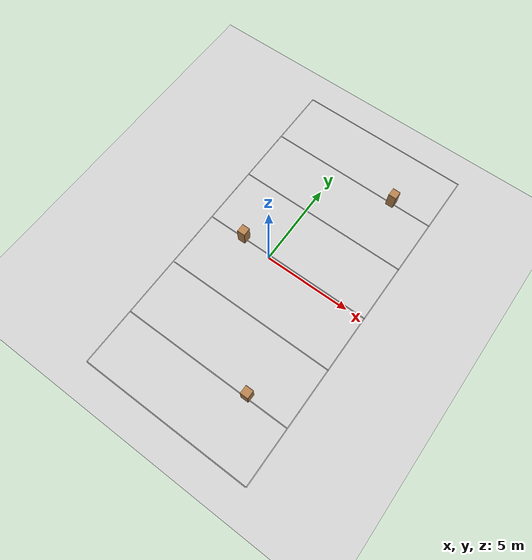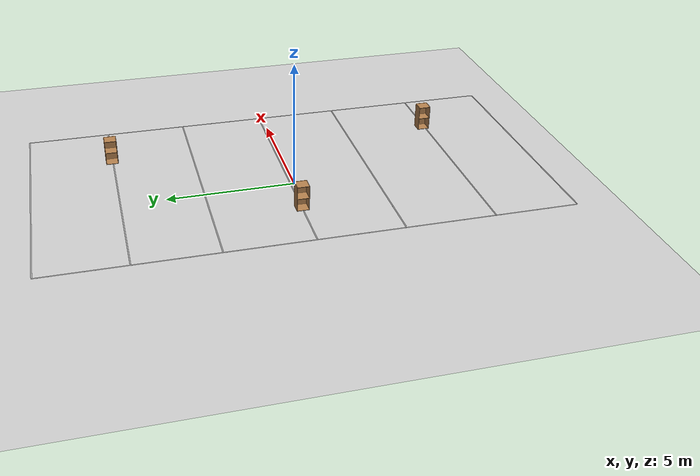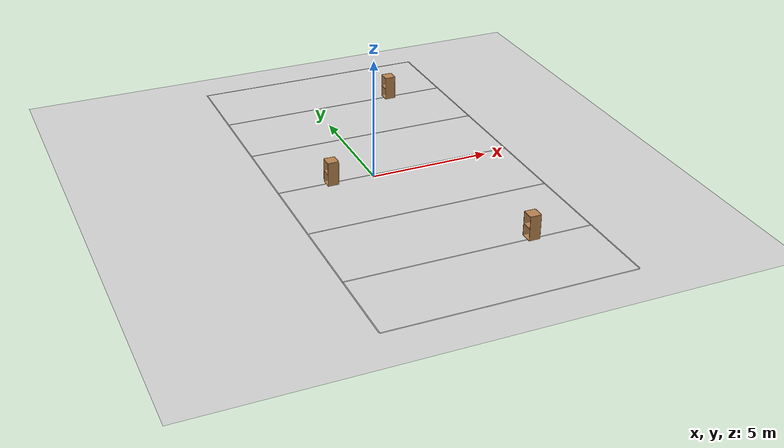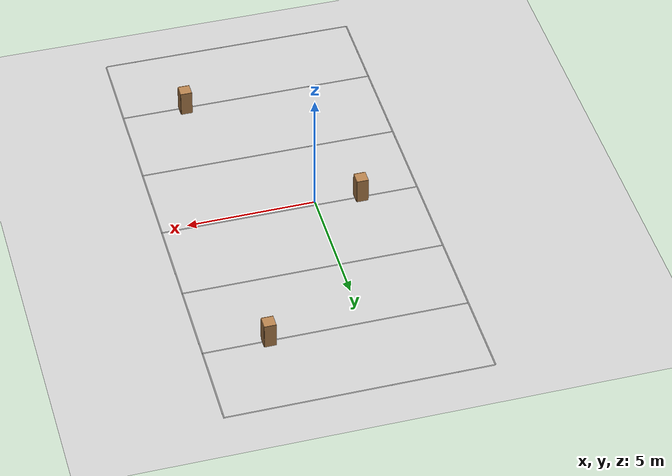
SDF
<sdf version="1.7">
 <world name="default">
  <model name="ground_plane">
   <static>1</static>
   <link name="link">
    <collision name="collision">
     <geometry><plane><normal>0 0 1</normal><size>100 100</size></plane></geometry>
     <surface>
      <contact><collide_bitmask>65535</collide_bitmask></contact>
      <friction><ode><mu>100</mu><mu2>50</mu2></ode></friction>
     </surface>
    </collision>
    <visual name="visual">
     <cast_shadows>0</cast_shadows>
     <geometry><plane><normal>0 0 1</normal><size>100 100</size></plane></geometry>
     <material>
      <script><uri>file://media/materials/scripts/gazebo.material</uri><name>Gazebo/Grey</name></script>
     </material>
    </visual>
   </link>
  </model>
  <gravity>0 0 -9.8</gravity>
  <magnetic_field>6e-06 2.3e-05 -4.2e-05</magnetic_field>
  <atmosphere type="adiabatic"/>
  <physics type="ode">
   <max_step_size>0.001</max_step_size>
   <real_time_factor>1</real_time_factor>
   <real_time_update_rate>1000</real_time_update_rate>
  </physics>
  <scene><ambient>0.4 0.4 0.4 1</ambient><background>0.7 0.7 0.7 1</background><shadows>1</shadows></scene>
  <spherical_coordinates>
   <surface_model>EARTH_WGS84</surface_model>
   <latitude_deg>0</latitude_deg>
   <longitude_deg>0</longitude_deg>
   <elevation>0</elevation>
   <heading_deg>0</heading_deg>
  </spherical_coordinates>
  <model name="cabinet">
   <static>1</static>
   <link name="cabinet_bottom_plate">
    <inertial>
     <pose>0 0 -1 0 -0 0</pose>
     <inertia><ixx>2.05</ixx><ixy>0</ixy><ixz>0</ixz><iyy>2.05</iyy><iyz>0</iyz><izz>2.05</izz></inertia>
     <mass>25</mass>
    </inertial>
    <collision name="cabinet_bottom_plate_geom">
     <pose>0 0 0.01 0 -0 0</pose>
     <geometry><box><size>0.45 0.45 0.02</size></box></geometry>
    </collision>
    <visual name="cabinet_bottom_plate_geom_visual">
     <pose>0 0 0.01 0 -0 0</pose>
     <geometry><box><size>0.45 0.45 0.02</size></box></geometry>
     <material>
      <script><uri>file://media/materials/scripts/gazebo.material</uri><name>Gazebo/Wood</name></script>
     </material>
    </visual>
    <collision name="cabinet_bottom_plate_geom_cabinet_back_plate">
     <pose>0.235 0 0.51 0 -0 0</pose>
     <geometry><box><size>0.02 0.45 1.02</size></box></geometry>
    </collision>
    <visual name="cabinet_bottom_plate_geom_cabinet_back_plate_visual">
     <pose>0.235 0 0.51 0 -0 0</pose>
     <geometry><box><size>0.02 0.45 1.02</size></box></geometry>
     <material>
      <script><uri>file://media/materials/scripts/gazebo.material</uri><name>Gazebo/Wood</name></script>
     </material>
    </visual>
    <collision name="cabinet_bottom_plate_geom_cabinet_left_plate">
     <pose>0 0.235 0.51 0 -0 0</pose>
     <geometry><box><size>0.45 0.02 1.02</size></box></geometry>
    </collision>
    <visual name="cabinet_bottom_plate_geom_cabinet_left_plate_visual">
     <pose>0 0.235 0.51 0 -0 0</pose>
     <geometry><box><size>0.45 0.02 1.02</size></box></geometry>
     <material>
      <script><uri>file://media/materials/scripts/gazebo.material</uri><name>Gazebo/Wood</name></script>
     </material>
    </visual>
    <collision name="cabinet_bottom_plate_geom_cabinet_middle_plate">
     <pose>0 0 0.51 0 -0 0</pose>
     <geometry><box><size>0.45 0.45 0.02</size></box></geometry>
    </collision>
    <visual name="cabinet_bottom_plate_geom_cabinet_middle_plate_visual">
     <pose>0 0 0.51 0 -0 0</pose>
     <geometry><box><size>0.45 0.45 0.02</size></box></geometry>
     <material>
      <script><uri>file://media/materials/scripts/gazebo.material</uri><name>Gazebo/Wood</name></script>
     </material>
    </visual>
    <collision name="cabinet_bottom_plate_geom_cabinet_right_plate">
     <pose>0 -0.235 0.51 0 -0 0</pose>
     <geometry><box><size>0.45 0.02 1.02</size></box></geometry>
    </collision>
    <visual name="cabinet_bottom_plate_geom_cabinet_right_plate_visual">
     <pose>0 -0.235 0.51 0 -0 0</pose>
     <geometry><box><size>0.45 0.02 1.02</size></box></geometry>
     <material>
      <script><uri>file://media/materials/scripts/gazebo.material</uri><name>Gazebo/Wood</name></script>
     </material>
    </visual>
    <collision name="cabinet_bottom_plate_geom_cabinet_top_plate">
     <pose>0 0 1.01 0 -0 0</pose>
     <geometry><box><size>0.45 0.45 0.02</size></box></geometry>
    </collision>
    <visual name="cabinet_bottom_plate_geom_cabinet_top_plate_visual">
     <pose>0 0 1.01 0 -0 0</pose>
     <geometry><box><size>0.45 0.45 0.02</size></box></geometry>
     <material>
      <script><uri>file://media/materials/scripts/gazebo.material</uri><name>Gazebo/Wood</name></script>
     </material>
    </visual>
   </link>
   <pose>3.54221 6.76102 0 0 -0 0</pose>
  </model>
  <model name="line_1_0">
   <link name="Wall_0">
    <pose>-0.194987 0 0 0 -0 3.14159</pose>
    <inertial>
     <mass>1</mass>
     <inertia><ixx>1</ixx><ixy>0</ixy><ixz>0</ixz><iyy>1</iyy><iyz>0</iyz><izz>1</izz></inertia>
    </inertial>
    <visual name="Wall_0_Visual">
     <pose>0 0 0.0025 0 -0 0</pose>
     <geometry><box><size>10 0.05 5e-05</size></box></geometry>
     <material>
      <script><uri>file://media/materials/scripts/gazebo.material</uri><name>Gazebo/Grey</name></script>
      <ambient>0 0 0 1</ambient>
      <shader type="pixel"><normal_map>__default__</normal_map></shader>
      <diffuse>0.7 0.7 0.7 1</diffuse>
      <specular>0.01 0.01 0.01 1</specular>
      <emissive>0 0 0 1</emissive>
     </material>
     <meta><layer>0</layer></meta>
    </visual>
    <collision name="Wall_0_Collision">
     <pose>0 0 0.0025 0 -0 0</pose>
     <geometry><box><size>10 0.05 5e-05</size></box></geometry>
     <surface>
      <friction>
       <ode><mu>1</mu><mu2>1</mu2><fdir1>0 0 0</fdir1><slip1>0</slip1><slip2>0</slip2></ode>
       <torsional>
        <coefficient>1</coefficient>
        <patch_radius>0</patch_radius>
        <surface_radius>0</surface_radius>
        <use_patch_radius>1</use_patch_radius>
        <ode><slip>0</slip></ode>
       </torsional>
      </friction>
      <bounce><restitution_coefficient>0</restitution_coefficient><threshold>1e+06</threshold></bounce>
      <contact>
       <collide_without_contact>0</collide_without_contact>
       <collide_without_contact_bitmask>1</collide_without_contact_bitmask>
       <collide_bitmask>1</collide_bitmask>
       <ode>
        <soft_cfm>0</soft_cfm>
        <soft_erp>0.2</soft_erp>
        <kp>1e+13</kp>
        <kd>1</kd>
        <max_vel>0.01</max_vel>
        <min_depth>0</min_depth>
       </ode>
       <bullet>
        <split_impulse>1</split_impulse>
        <split_impulse_penetration_threshold>-0.01</split_impulse_penetration_threshold>
        <soft_cfm>0</soft_cfm>
        <soft_erp>0.2</soft_erp>
        <kp>1e+13</kp>
        <kd>1</kd>
       </bullet>
      </contact>
     </surface>
    </collision>
   </link>
   <static>1</static>
   <pose>1.21607 0.141988 0 0 -0 0</pose>
  </model>
  <model name="black_line_20m">
   <link name="Wall_0">
    <pose>1.3175 -0.5225 0 0 -0 1.5708</pose>
    <inertial>
     <mass>1</mass>
     <inertia><ixx>1</ixx><ixy>0</ixy><ixz>0</ixz><iyy>1</iyy><iyz>0</iyz><izz>1</izz></inertia>
    </inertial>
    <visual name="Wall_0_Visual">
     <pose>0 0 0.0005 0 -0 0</pose>
     <geometry><box><size>20 0.05 0.0005</size></box></geometry>
     <material>
      <script><uri>file://media/materials/scripts/gazebo.material</uri><name>Gazebo/Grey</name></script>
      <ambient>0 0 0 1</ambient>
      <shader type="pixel"><normal_map>__default__</normal_map></shader>
      <diffuse>0.7 0.7 0.7 1</diffuse>
      <specular>0.01 0.01 0.01 1</specular>
      <emissive>0 0 0 1</emissive>
     </material>
     <meta><layer>0</layer></meta>
    </visual>
    <collision name="Wall_0_Collision">
     <pose>0 0 0.0005 0 -0 0</pose>
     <geometry><box><size>3.9 0.05 0.001</size></box></geometry>
     <surface>
      <friction>
       <ode><mu>1</mu><mu2>1</mu2><fdir1>0 0 0</fdir1><slip1>0</slip1><slip2>0</slip2></ode>
       <torsional>
        <coefficient>1</coefficient>
        <patch_radius>0</patch_radius>
        <surface_radius>0</surface_radius>
        <use_patch_radius>1</use_patch_radius>
        <ode><slip>0</slip></ode>
       </torsional>
      </friction>
      <bounce><restitution_coefficient>0</restitution_coefficient><threshold>1e+06</threshold></bounce>
      <contact>
       <collide_without_contact>0</collide_without_contact>
       <collide_without_contact_bitmask>1</collide_without_contact_bitmask>
       <collide_bitmask>1</collide_bitmask>
       <ode>
        <soft_cfm>0</soft_cfm>
        <soft_erp>0.2</soft_erp>
        <kp>1e+13</kp>
        <kd>1</kd>
        <max_vel>0.01</max_vel>
        <min_depth>0</min_depth>
       </ode>
       <bullet>
        <split_impulse>1</split_impulse>
        <split_impulse_penetration_threshold>-0.01</split_impulse_penetration_threshold>
        <soft_cfm>0</soft_cfm>
        <soft_erp>0.2</soft_erp>
        <kp>1e+13</kp>
        <kd>1</kd>
       </bullet>
      </contact>
     </surface>
    </collision>
   </link>
   <static>1</static>
   <pose>-5.33351 0.54242 0.001 0 -0 0</pose>
  </model>
  <model name="line_1_0_clone">
   <link name="Wall_0">
    <pose>-0.194987 0 0 0 -0 3.14159</pose>
    <inertial>
     <mass>1</mass>
     <inertia><ixx>1</ixx><ixy>0</ixy><ixz>0</ixz><iyy>1</iyy><iyz>0</iyz><izz>1</izz></inertia>
    </inertial>
    <visual name="Wall_0_Visual">
     <pose>0 0 0.0025 0 -0 0</pose>
     <geometry><box><size>10 0.05 5e-05</size></box></geometry>
     <material>
      <script><uri>file://media/materials/scripts/gazebo.material</uri><name>Gazebo/Grey</name></script>
      <ambient>0 0 0 1</ambient>
      <shader type="pixel"><normal_map>__default__</normal_map></shader>
      <diffuse>0.7 0.7 0.7 1</diffuse>
      <specular>0.01 0.01 0.01 1</specular>
      <emissive>0 0 0 1</emissive>
     </material>
     <meta><layer>0</layer></meta>
    </visual>
    <collision name="Wall_0_Collision">
     <pose>0 0 0.0025 0 -0 0</pose>
     <geometry><box><size>10 0.05 5e-05</size></box></geometry>
     <surface>
      <friction>
       <ode><mu>1</mu><mu2>1</mu2><fdir1>0 0 0</fdir1><slip1>0</slip1><slip2>0</slip2></ode>
       <torsional>
        <coefficient>1</coefficient>
        <patch_radius>0</patch_radius>
        <surface_radius>0</surface_radius>
        <use_patch_radius>1</use_patch_radius>
        <ode><slip>0</slip></ode>
       </torsional>
      </friction>
      <bounce><restitution_coefficient>0</restitution_coefficient><threshold>1e+06</threshold></bounce>
      <contact>
       <collide_without_contact>0</collide_without_contact>
       <collide_without_contact_bitmask>1</collide_without_contact_bitmask>
       <collide_bitmask>1</collide_bitmask>
       <ode>
        <soft_cfm>0</soft_cfm>
        <soft_erp>0.2</soft_erp>
        <kp>1e+13</kp>
        <kd>1</kd>
        <max_vel>0.01</max_vel>
        <min_depth>0</min_depth>
       </ode>
       <bullet>
        <split_impulse>1</split_impulse>
        <split_impulse_penetration_threshold>-0.01</split_impulse_penetration_threshold>
        <soft_cfm>0</soft_cfm>
        <soft_erp>0.2</soft_erp>
        <kp>1e+13</kp>
        <kd>1</kd>
       </bullet>
      </contact>
     </surface>
    </collision>
   </link>
   <static>1</static>
   <pose>1.18778 10.0091 0 0 -0 0</pose>
  </model>
  <model name="line_1_0_clone_0">
   <link name="Wall_0">
    <pose>-0.194987 0 0 0 -0 3.14159</pose>
    <inertial>
     <mass>1</mass>
     <inertia><ixx>1</ixx><ixy>0</ixy><ixz>0</ixz><iyy>1</iyy><iyz>0</iyz><izz>1</izz></inertia>
    </inertial>
    <visual name="Wall_0_Visual">
     <pose>0 0 0.0025 0 -0 0</pose>
     <geometry><box><size>10 0.05 5e-05</size></box></geometry>
     <material>
      <script><uri>file://media/materials/scripts/gazebo.material</uri><name>Gazebo/Grey</name></script>
      <ambient>0 0 0 1</ambient>
      <shader type="pixel"><normal_map>__default__</normal_map></shader>
      <diffuse>0.7 0.7 0.7 1</diffuse>
      <specular>0.01 0.01 0.01 1</specular>
      <emissive>0 0 0 1</emissive>
     </material>
     <meta><layer>0</layer></meta>
    </visual>
    <collision name="Wall_0_Collision">
     <pose>0 0 0.0025 0 -0 0</pose>
     <geometry><box><size>10 0.05 5e-05</size></box></geometry>
     <surface>
      <friction>
       <ode><mu>1</mu><mu2>1</mu2><fdir1>0 0 0</fdir1><slip1>0</slip1><slip2>0</slip2></ode>
       <torsional>
        <coefficient>1</coefficient>
        <patch_radius>0</patch_radius>
        <surface_radius>0</surface_radius>
        <use_patch_radius>1</use_patch_radius>
        <ode><slip>0</slip></ode>
       </torsional>
      </friction>
      <bounce><restitution_coefficient>0</restitution_coefficient><threshold>1e+06</threshold></bounce>
      <contact>
       <collide_without_contact>0</collide_without_contact>
       <collide_without_contact_bitmask>1</collide_without_contact_bitmask>
       <collide_bitmask>1</collide_bitmask>
       <ode>
        <soft_cfm>0</soft_cfm>
        <soft_erp>0.2</soft_erp>
        <kp>1e+13</kp>
        <kd>1</kd>
        <max_vel>0.01</max_vel>
        <min_depth>0</min_depth>
       </ode>
       <bullet>
        <split_impulse>1</split_impulse>
        <split_impulse_penetration_threshold>-0.01</split_impulse_penetration_threshold>
        <soft_cfm>0</soft_cfm>
        <soft_erp>0.2</soft_erp>
        <kp>1e+13</kp>
        <kd>1</kd>
       </bullet>
      </contact>
     </surface>
    </collision>
   </link>
   <static>1</static>
   <pose>1.21008 6.73083 0 0 -0 0</pose>
  </model>
  <model name="line_1_0_clone_1">
   <link name="Wall_0">
    <pose>-0.194987 0 0 0 -0 3.14159</pose>
    <inertial>
     <mass>1</mass>
     <inertia><ixx>1</ixx><ixy>0</ixy><ixz>0</ixz><iyy>1</iyy><iyz>0</iyz><izz>1</izz></inertia>
    </inertial>
    <visual name="Wall_0_Visual">
     <pose>0 0 0.0025 0 -0 0</pose>
     <geometry><box><size>10 0.05 5e-05</size></box></geometry>
     <material>
      <script><uri>file://media/materials/scripts/gazebo.material</uri><name>Gazebo/Grey</name></script>
      <ambient>0 0 0 1</ambient>
      <shader type="pixel"><normal_map>__default__</normal_map></shader>
      <diffuse>0.7 0.7 0.7 1</diffuse>
      <specular>0.01 0.01 0.01 1</specular>
      <emissive>0 0 0 1</emissive>
     </material>
     <meta><layer>0</layer></meta>
    </visual>
    <collision name="Wall_0_Collision">
     <pose>0 0 0.0025 0 -0 0</pose>
     <geometry><box><size>10 0.05 5e-05</size></box></geometry>
     <surface>
      <friction>
       <ode><mu>1</mu><mu2>1</mu2><fdir1>0 0 0</fdir1><slip1>0</slip1><slip2>0</slip2></ode>
       <torsional>
        <coefficient>1</coefficient>
        <patch_radius>0</patch_radius>
        <surface_radius>0</surface_radius>
        <use_patch_radius>1</use_patch_radius>
        <ode><slip>0</slip></ode>
       </torsional>
      </friction>
      <bounce><restitution_coefficient>0</restitution_coefficient><threshold>1e+06</threshold></bounce>
      <contact>
       <collide_without_contact>0</collide_without_contact>
       <collide_without_contact_bitmask>1</collide_without_contact_bitmask>
       <collide_bitmask>1</collide_bitmask>
       <ode>
        <soft_cfm>0</soft_cfm>
        <soft_erp>0.2</soft_erp>
        <kp>1e+13</kp>
        <kd>1</kd>
        <max_vel>0.01</max_vel>
        <min_depth>0</min_depth>
       </ode>
       <bullet>
        <split_impulse>1</split_impulse>
        <split_impulse_penetration_threshold>-0.01</split_impulse_penetration_threshold>
        <soft_cfm>0</soft_cfm>
        <soft_erp>0.2</soft_erp>
        <kp>1e+13</kp>
        <kd>1</kd>
       </bullet>
      </contact>
     </surface>
    </collision>
   </link>
   <static>1</static>
   <pose>1.22845 -3.19568 0 0 -0 0</pose>
  </model>
  <model name="line_1_0_clone_2">
   <link name="Wall_0">
    <pose>-0.194987 0 0 0 -0 3.14159</pose>
    <inertial>
     <mass>1</mass>
     <inertia><ixx>1</ixx><ixy>0</ixy><ixz>0</ixz><iyy>1</iyy><iyz>0</iyz><izz>1</izz></inertia>
    </inertial>
    <visual name="Wall_0_Visual">
     <pose>0 0 0.0025 0 -0 0</pose>
     <geometry><box><size>10 0.05 5e-05</size></box></geometry>
     <material>
      <script><uri>file://media/materials/scripts/gazebo.material</uri><name>Gazebo/Grey</name></script>
      <ambient>0 0 0 1</ambient>
      <shader type="pixel"><normal_map>__default__</normal_map></shader>
      <diffuse>0.7 0.7 0.7 1</diffuse>
      <specular>0.01 0.01 0.01 1</specular>
      <emissive>0 0 0 1</emissive>
     </material>
     <meta><layer>0</layer></meta>
    </visual>
    <collision name="Wall_0_Collision">
     <pose>0 0 0.0025 0 -0 0</pose>
     <geometry><box><size>10 0.05 5e-05</size></box></geometry>
     <surface>
      <friction>
       <ode><mu>1</mu><mu2>1</mu2><fdir1>0 0 0</fdir1><slip1>0</slip1><slip2>0</slip2></ode>
       <torsional>
        <coefficient>1</coefficient>
        <patch_radius>0</patch_radius>
        <surface_radius>0</surface_radius>
        <use_patch_radius>1</use_patch_radius>
        <ode><slip>0</slip></ode>
       </torsional>
      </friction>
      <bounce><restitution_coefficient>0</restitution_coefficient><threshold>1e+06</threshold></bounce>
      <contact>
       <collide_without_contact>0</collide_without_contact>
       <collide_without_contact_bitmask>1</collide_without_contact_bitmask>
       <collide_bitmask>1</collide_bitmask>
       <ode>
        <soft_cfm>0</soft_cfm>
        <soft_erp>0.2</soft_erp>
        <kp>1e+13</kp>
        <kd>1</kd>
        <max_vel>0.01</max_vel>
        <min_depth>0</min_depth>
       </ode>
       <bullet>
        <split_impulse>1</split_impulse>
        <split_impulse_penetration_threshold>-0.01</split_impulse_penetration_threshold>
        <soft_cfm>0</soft_cfm>
        <soft_erp>0.2</soft_erp>
        <kp>1e+13</kp>
        <kd>1</kd>
       </bullet>
      </contact>
     </surface>
    </collision>
   </link>
   <static>1</static>
   <pose>1.18795 -6.70043 0 0 -0 0</pose>
  </model>
  <model name="line_1_0_clone_3">
   <link name="Wall_0">
    <pose>-0.194987 0 0 0 -0 3.14159</pose>
    <inertial>
     <mass>1</mass>
     <inertia><ixx>1</ixx><ixy>0</ixy><ixz>0</ixz><iyy>1</iyy><iyz>0</iyz><izz>1</izz></inertia>
    </inertial>
    <visual name="Wall_0_Visual">
     <pose>0 0 0.0025 0 -0 0</pose>
     <geometry><box><size>10 0.05 5e-05</size></box></geometry>
     <material>
      <script><uri>file://media/materials/scripts/gazebo.material</uri><name>Gazebo/Grey</name></script>
      <ambient>0 0 0 1</ambient>
      <shader type="pixel"><normal_map>__default__</normal_map></shader>
      <diffuse>0.7 0.7 0.7 1</diffuse>
      <specular>0.01 0.01 0.01 1</specular>
      <emissive>0 0 0 1</emissive>
     </material>
     <meta><layer>0</layer></meta>
    </visual>
    <collision name="Wall_0_Collision">
     <pose>0 0 0.0025 0 -0 0</pose>
     <geometry><box><size>10 0.05 5e-05</size></box></geometry>
     <surface>
      <friction>
       <ode><mu>1</mu><mu2>1</mu2><fdir1>0 0 0</fdir1><slip1>0</slip1><slip2>0</slip2></ode>
       <torsional>
        <coefficient>1</coefficient>
        <patch_radius>0</patch_radius>
        <surface_radius>0</surface_radius>
        <use_patch_radius>1</use_patch_radius>
        <ode><slip>0</slip></ode>
       </torsional>
      </friction>
      <bounce><restitution_coefficient>0</restitution_coefficient><threshold>1e+06</threshold></bounce>
      <contact>
       <collide_without_contact>0</collide_without_contact>
       <collide_without_contact_bitmask>1</collide_without_contact_bitmask>
       <collide_bitmask>1</collide_bitmask>
       <ode>
        <soft_cfm>0</soft_cfm>
        <soft_erp>0.2</soft_erp>
        <kp>1e+13</kp>
        <kd>1</kd>
        <max_vel>0.01</max_vel>
        <min_depth>0</min_depth>
       </ode>
       <bullet>
        <split_impulse>1</split_impulse>
        <split_impulse_penetration_threshold>-0.01</split_impulse_penetration_threshold>
        <soft_cfm>0</soft_cfm>
        <soft_erp>0.2</soft_erp>
        <kp>1e+13</kp>
        <kd>1</kd>
       </bullet>
      </contact>
     </surface>
    </collision>
   </link>
   <static>1</static>
   <pose>1.18796 -9.98833 0 0 -0 0</pose>
  </model>
  <model name="line_1_0_clone_4">
   <link name="Wall_0">
    <pose>-0.194987 0 0 0 -0 3.14159</pose>
    <inertial>
     <mass>1</mass>
     <inertia><ixx>1</ixx><ixy>0</ixy><ixz>0</ixz><iyy>1</iyy><iyz>0</iyz><izz>1</izz></inertia>
    </inertial>
    <visual name="Wall_0_Visual">
     <pose>0 0 0.0025 0 -0 0</pose>
     <geometry><box><size>10 0.05 5e-05</size></box></geometry>
     <material>
      <script><uri>file://media/materials/scripts/gazebo.material</uri><name>Gazebo/Grey</name></script>
      <ambient>0 0 0 1</ambient>
      <shader type="pixel"><normal_map>__default__</normal_map></shader>
      <diffuse>0.7 0.7 0.7 1</diffuse>
      <specular>0.01 0.01 0.01 1</specular>
      <emissive>0 0 0 1</emissive>
     </material>
     <meta><layer>0</layer></meta>
    </visual>
    <collision name="Wall_0_Collision">
     <pose>0 0 0.0025 0 -0 0</pose>
     <geometry><box><size>10 0.05 5e-05</size></box></geometry>
     <surface>
      <friction>
       <ode><mu>1</mu><mu2>1</mu2><fdir1>0 0 0</fdir1><slip1>0</slip1><slip2>0</slip2></ode>
       <torsional>
        <coefficient>1</coefficient>
        <patch_radius>0</patch_radius>
        <surface_radius>0</surface_radius>
        <use_patch_radius>1</use_patch_radius>
        <ode><slip>0</slip></ode>
       </torsional>
      </friction>
      <bounce><restitution_coefficient>0</restitution_coefficient><threshold>1e+06</threshold></bounce>
      <contact>
       <collide_without_contact>0</collide_without_contact>
       <collide_without_contact_bitmask>1</collide_without_contact_bitmask>
       <collide_bitmask>1</collide_bitmask>
       <ode>
        <soft_cfm>0</soft_cfm>
        <soft_erp>0.2</soft_erp>
        <kp>1e+13</kp>
        <kd>1</kd>
        <max_vel>0.01</max_vel>
        <min_depth>0</min_depth>
       </ode>
       <bullet>
        <split_impulse>1</split_impulse>
        <split_impulse_penetration_threshold>-0.01</split_impulse_penetration_threshold>
        <soft_cfm>0</soft_cfm>
        <soft_erp>0.2</soft_erp>
        <kp>1e+13</kp>
        <kd>1</kd>
       </bullet>
      </contact>
     </surface>
    </collision>
   </link>
   <static>1</static>
   <pose>1.21027 3.53128 0 0 -0 0</pose>
  </model>
  <model name="cabinet_clone">
   <static>1</static>
   <link name="cabinet_bottom_plate">
    <inertial>
     <pose>0 0 -1 0 -0 0</pose>
     <inertia><ixx>2.05</ixx><ixy>0</ixy><ixz>0</ixz><iyy>2.05</iyy><iyz>0</iyz><izz>2.05</izz></inertia>
     <mass>25</mass>
    </inertial>
    <collision name="cabinet_bottom_plate_geom">
     <pose>0 0 0.01 0 -0 0</pose>
     <geometry><box><size>0.45 0.45 0.02</size></box></geometry>
    </collision>
    <visual name="cabinet_bottom_plate_geom_visual">
     <pose>0 0 0.01 0 -0 0</pose>
     <geometry><box><size>0.45 0.45 0.02</size></box></geometry>
     <material>
      <script><uri>file://media/materials/scripts/gazebo.material</uri><name>Gazebo/Wood</name></script>
     </material>
    </visual>
    <collision name="cabinet_bottom_plate_geom_cabinet_back_plate">
     <pose>0.235 0 0.51 0 -0 0</pose>
     <geometry><box><size>0.02 0.45 1.02</size></box></geometry>
    </collision>
    <visual name="cabinet_bottom_plate_geom_cabinet_back_plate_visual">
     <pose>0.235 0 0.51 0 -0 0</pose>
     <geometry><box><size>0.02 0.45 1.02</size></box></geometry>
     <material>
      <script><uri>file://media/materials/scripts/gazebo.material</uri><name>Gazebo/Wood</name></script>
     </material>
    </visual>
    <collision name="cabinet_bottom_plate_geom_cabinet_left_plate">
     <pose>0 0.235 0.51 0 -0 0</pose>
     <geometry><box><size>0.45 0.02 1.02</size></box></geometry>
    </collision>
    <visual name="cabinet_bottom_plate_geom_cabinet_left_plate_visual">
     <pose>0 0.235 0.51 0 -0 0</pose>
     <geometry><box><size>0.45 0.02 1.02</size></box></geometry>
     <material>
      <script><uri>file://media/materials/scripts/gazebo.material</uri><name>Gazebo/Wood</name></script>
     </material>
    </visual>
    <collision name="cabinet_bottom_plate_geom_cabinet_middle_plate">
     <pose>0 0 0.51 0 -0 0</pose>
     <geometry><box><size>0.45 0.45 0.02</size></box></geometry>
    </collision>
    <visual name="cabinet_bottom_plate_geom_cabinet_middle_plate_visual">
     <pose>0 0 0.51 0 -0 0</pose>
     <geometry><box><size>0.45 0.45 0.02</size></box></geometry>
     <material>
      <script><uri>file://media/materials/scripts/gazebo.material</uri><name>Gazebo/Wood</name></script>
     </material>
    </visual>
    <collision name="cabinet_bottom_plate_geom_cabinet_right_plate">
     <pose>0 -0.235 0.51 0 -0 0</pose>
     <geometry><box><size>0.45 0.02 1.02</size></box></geometry>
    </collision>
    <visual name="cabinet_bottom_plate_geom_cabinet_right_plate_visual">
     <pose>0 -0.235 0.51 0 -0 0</pose>
     <geometry><box><size>0.45 0.02 1.02</size></box></geometry>
     <material>
      <script><uri>file://media/materials/scripts/gazebo.material</uri><name>Gazebo/Wood</name></script>
     </material>
    </visual>
    <collision name="cabinet_bottom_plate_geom_cabinet_top_plate">
     <pose>0 0 1.01 0 -0 0</pose>
     <geometry><box><size>0.45 0.45 0.02</size></box></geometry>
    </collision>
    <visual name="cabinet_bottom_plate_geom_cabinet_top_plate_visual">
     <pose>0 0 1.01 0 -0 0</pose>
     <geometry><box><size>0.45 0.45 0.02</size></box></geometry>
     <material>
      <script><uri>file://media/materials/scripts/gazebo.material</uri><name>Gazebo/Wood</name></script>
     </material>
    </visual>
   </link>
   <pose>-1.77999 0.146004 0 0 -0 0</pose>
  </model>
  <model name="cabinet_clone_0">
   <static>1</static>
   <link name="cabinet_bottom_plate">
    <inertial>
     <pose>0 0 -1 0 -0 0</pose>
     <inertia><ixx>2.05</ixx><ixy>0</ixy><ixz>0</ixz><iyy>2.05</iyy><iyz>0</iyz><izz>2.05</izz></inertia>
     <mass>25</mass>
    </inertial>
    <collision name="cabinet_bottom_plate_geom">
     <pose>0 0 0.01 0 -0 0</pose>
     <geometry><box><size>0.45 0.45 0.02</size></box></geometry>
    </collision>
    <visual name="cabinet_bottom_plate_geom_visual">
     <pose>0 0 0.01 0 -0 0</pose>
     <geometry><box><size>0.45 0.45 0.02</size></box></geometry>
     <material>
      <script><uri>file://media/materials/scripts/gazebo.material</uri><name>Gazebo/Wood</name></script>
     </material>
    </visual>
    <collision name="cabinet_bottom_plate_geom_cabinet_back_plate">
     <pose>0.235 0 0.51 0 -0 0</pose>
     <geometry><box><size>0.02 0.45 1.02</size></box></geometry>
    </collision>
    <visual name="cabinet_bottom_plate_geom_cabinet_back_plate_visual">
     <pose>0.235 0 0.51 0 -0 0</pose>
     <geometry><box><size>0.02 0.45 1.02</size></box></geometry>
     <material>
      <script><uri>file://media/materials/scripts/gazebo.material</uri><name>Gazebo/Wood</name></script>
     </material>
    </visual>
    <collision name="cabinet_bottom_plate_geom_cabinet_left_plate">
     <pose>0 0.235 0.51 0 -0 0</pose>
     <geometry><box><size>0.45 0.02 1.02</size></box></geometry>
    </collision>
    <visual name="cabinet_bottom_plate_geom_cabinet_left_plate_visual">
     <pose>0 0.235 0.51 0 -0 0</pose>
     <geometry><box><size>0.45 0.02 1.02</size></box></geometry>
     <material>
      <script><uri>file://media/materials/scripts/gazebo.material</uri><name>Gazebo/Wood</name></script>
     </material>
    </visual>
    <collision name="cabinet_bottom_plate_geom_cabinet_middle_plate">
     <pose>0 0 0.51 0 -0 0</pose>
     <geometry><box><size>0.45 0.45 0.02</size></box></geometry>
    </collision>
    <visual name="cabinet_bottom_plate_geom_cabinet_middle_plate_visual">
     <pose>0 0 0.51 0 -0 0</pose>
     <geometry><box><size>0.45 0.45 0.02</size></box></geometry>
     <material>
      <script><uri>file://media/materials/scripts/gazebo.material</uri><name>Gazebo/Wood</name></script>
     </material>
    </visual>
    <collision name="cabinet_bottom_plate_geom_cabinet_right_plate">
     <pose>0 -0.235 0.51 0 -0 0</pose>
     <geometry><box><size>0.45 0.02 1.02</size></box></geometry>
    </collision>
    <visual name="cabinet_bottom_plate_geom_cabinet_right_plate_visual">
     <pose>0 -0.235 0.51 0 -0 0</pose>
     <geometry><box><size>0.45 0.02 1.02</size></box></geometry>
     <material>
      <script><uri>file://media/materials/scripts/gazebo.material</uri><name>Gazebo/Wood</name></script>
     </material>
    </visual>
    <collision name="cabinet_bottom_plate_geom_cabinet_top_plate">
     <pose>0 0 1.01 0 -0 0</pose>
     <geometry><box><size>0.45 0.45 0.02</size></box></geometry>
    </collision>
    <visual name="cabinet_bottom_plate_geom_cabinet_top_plate_visual">
     <pose>0 0 1.01 0 -0 0</pose>
     <geometry><box><size>0.45 0.45 0.02</size></box></geometry>
     <material>
      <script><uri>file://media/materials/scripts/gazebo.material</uri><name>Gazebo/Wood</name></script>
     </material>
    </visual>
   </link>
   <pose>3.52002 -6.58277 0 0 -0 0</pose>
  </model>
  <light name="sun" type="directional">
   <pose>-0.955999 -0.078041 10 0 -0 0</pose>
   <diffuse>0.8 0.8 0.8 1</diffuse>
   <specular>0.2 0.2 0.2 1</specular>
   <attenuation>
    <range>1000</range>
    <constant>0.9</constant>
    <linear>0.01</linear>
    <quadratic>0.001</quadratic>
   </attenuation>
   <direction>-0.5 0.1 -0.9</direction>
   <spot><inner_angle>0</inner_angle><outer_angle>0</outer_angle><falloff>0</falloff></spot>
  </light>
  <model name="black_line_20m_clone">
   <link name="Wall_0">
    <pose>1.3175 -0.5225 0 0 -0 1.5708</pose>
    <inertial>
     <mass>1</mass>
     <inertia><ixx>1</ixx><ixy>0</ixy><ixz>0</ixz><iyy>1</iyy><iyz>0</iyz><izz>1</izz></inertia>
    </inertial>
    <visual name="Wall_0_Visual">
     <pose>0 0 0.0005 0 -0 0</pose>
     <geometry><box><size>20 0.05 0.0005</size></box></geometry>
     <material>
      <script><uri>file://media/materials/scripts/gazebo.material</uri><name>Gazebo/Grey</name></script>
      <ambient>0.3 0.3 0.3 1</ambient>
      <shader type="pixel"><normal_map>__default__</normal_map></shader>
      <diffuse>0.7 0.7 0.7 1</diffuse>
      <specular>0.01 0.01 0.01 1</specular>
      <emissive>0 0 0 1</emissive>
     </material>
     <meta><layer>0</layer></meta>
    </visual>
    <collision name="Wall_0_Collision">
     <pose>0 0 0.0005 0 -0 0</pose>
     <geometry><box><size>3.9 0.05 0.001</size></box></geometry>
     <surface>
      <friction>
       <ode><mu>1</mu><mu2>1</mu2><fdir1>0 0 0</fdir1><slip1>0</slip1><slip2>0</slip2></ode>
       <torsional>
        <coefficient>1</coefficient>
        <patch_radius>0</patch_radius>
        <surface_radius>0</surface_radius>
        <use_patch_radius>1</use_patch_radius>
        <ode><slip>0</slip></ode>
       </torsional>
      </friction>
      <bounce><restitution_coefficient>0</restitution_coefficient><threshold>1e+06</threshold></bounce>
      <contact>
       <collide_without_contact>0</collide_without_contact>
       <collide_without_contact_bitmask>1</collide_without_contact_bitmask>
       <collide_bitmask>1</collide_bitmask>
       <ode>
        <soft_cfm>0</soft_cfm>
        <soft_erp>0.2</soft_erp>
        <kp>1e+13</kp>
        <kd>1</kd>
        <max_vel>0.01</max_vel>
        <min_depth>0</min_depth>
       </ode>
       <bullet>
        <split_impulse>1</split_impulse>
        <split_impulse_penetration_threshold>-0.01</split_impulse_penetration_threshold>
        <soft_cfm>0</soft_cfm>
        <soft_erp>0.2</soft_erp>
        <kp>1e+13</kp>
        <kd>1</kd>
       </bullet>
      </contact>
     </surface>
    </collision>
   </link>
   <static>1</static>
   <pose>4.69554 0.562674 0.001 0 -0 0</pose>
  </model>
  <model name="asphalt_plane_white2">
   <link name="link">
    <inertial>
     <mass>1</mass>
     <inertia><ixx>1</ixx><ixy>0</ixy><ixz>0</ixz><iyy>1</iyy><iyz>0</iyz><izz>1</izz></inertia>
    </inertial>
    <visual name="visual">
     <cast_shadows>0</cast_shadows>
     <geometry><box><size>20 20 5e-05</size></box></geometry>
     <material>
      <script>
       <uri>model://asphalt_plane/materials/scripts</uri>
       <uri>model://asphalt_plane/materials/textures</uri>
       <name>vrc/asphalt</name>
      </script>
      <shader type="pixel"><normal_map>__default__</normal_map></shader>
      <ambient>0.933 0.933 0.925 1</ambient>
      <diffuse>0.933 0.933 0.925 1</diffuse>
      <specular>0.933 0.933 0.925 1</specular>
      <emissive>0.933 0.933 0.925 1</emissive>
     </material>
    </visual>
    <collision name="collision">
     <geometry><box><size>20 20 0.1</size></box></geometry>
     <surface>
      <friction>
       <ode><mu>1</mu><mu2>1</mu2><fdir1>0 0 0</fdir1><slip1>0</slip1><slip2>0</slip2></ode>
       <torsional>
        <coefficient>1</coefficient>
        <patch_radius>0</patch_radius>
        <surface_radius>0</surface_radius>
        <use_patch_radius>1</use_patch_radius>
        <ode><slip>0</slip></ode>
       </torsional>
      </friction>
      <bounce><restitution_coefficient>0</restitution_coefficient><threshold>1e+06</threshold></bounce>
      <contact>
       <collide_without_contact>0</collide_without_contact>
       <collide_without_contact_bitmask>1</collide_without_contact_bitmask>
       <collide_bitmask>1</collide_bitmask>
       <ode>
        <soft_cfm>0</soft_cfm>
        <soft_erp>0.2</soft_erp>
        <kp>1e+13</kp>
        <kd>1</kd>
        <max_vel>0.01</max_vel>
        <min_depth>0</min_depth>
       </ode>
       <bullet>
        <split_impulse>1</split_impulse>
        <split_impulse_penetration_threshold>-0.01</split_impulse_penetration_threshold>
        <soft_cfm>0</soft_cfm>
        <soft_erp>0.2</soft_erp>
        <kp>1e+13</kp>
        <kd>1</kd>
       </bullet>
      </contact>
     </surface>
    </collision>
   </link>
   <static>1</static>
   <pose>0.027701 0.008659 -0.999 0 -0 0</pose>
  </model>
 </world>
</sdf>
